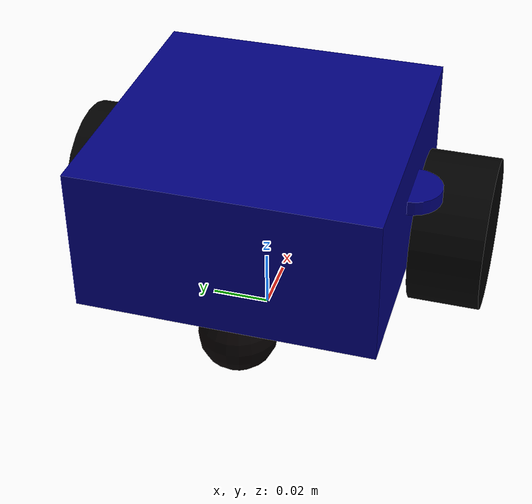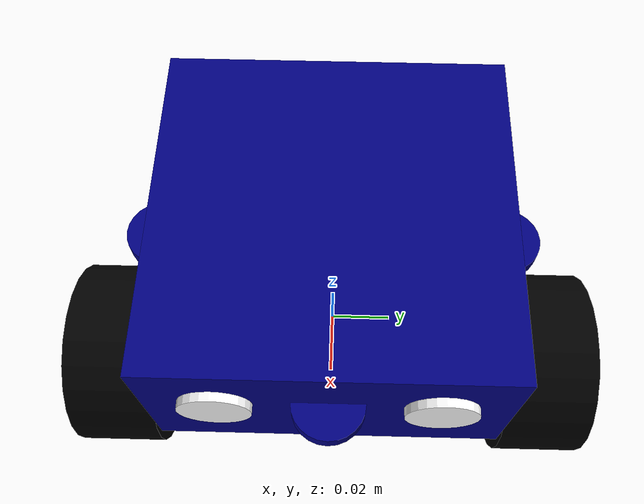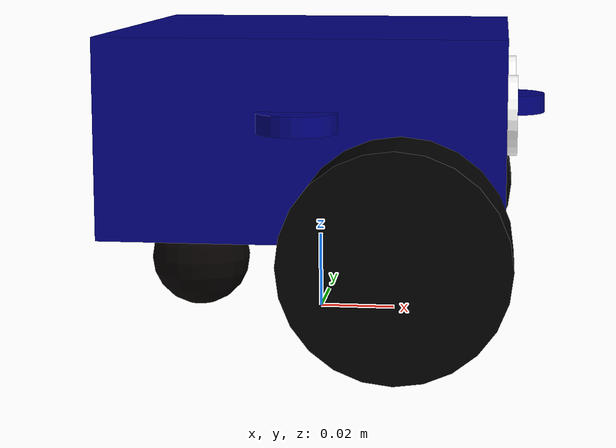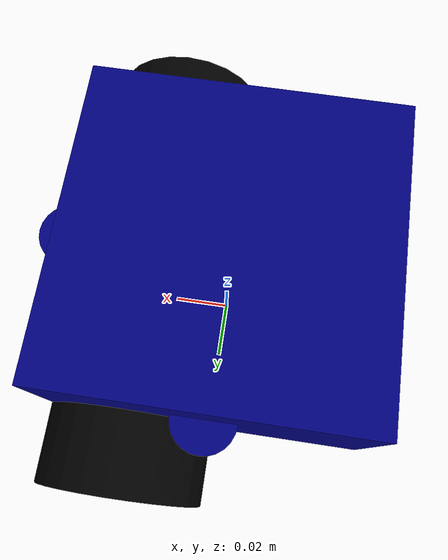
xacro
<?xml version="1.0"?>
<robot name="my_robot" xmlns:xacro="http://www.ros.org/wiki/xacro">

    <xacro:include filename="common_properties.xacro" />
    <xacro:include filename="mobile_base.xacro" />
    <xacro:include filename="mobile_base_gazebo.xacro" />
    <xacro:include filename="ultrasonic.xacro" />

</robot>

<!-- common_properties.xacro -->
<robot xmlns:xacro="http://www.ros.org/wiki/xacro">

    <material name="blue">
        <color rgba="0 0 0.5 1" />
    </material>

    <material name="white">
        <color rgba="1 1 1 1" />
    </material>

    <material name="grey">
        <color rgba="05 0.5 0.5 1" />
    </material>

     <material name="black">
        <color rgba="0 0 0 1" />
    </material>

    <xacro:macro name="box_inertia" params="m l w h xyz rpy">
        <inertial>
            <origin xyz="${xyz}" rpy="${rpy}" />
            <mass value="${m}" />
            <inertia ixx="${(m/12) * (h*h + l*l)}" ixy="0" ixz="0"
                     iyy="${(m/12) * (w*w + l*l)}" iyz="0"
                     izz="${(m/12) * (w*w + h*h)}" />
        </inertial>
    </xacro:macro>

    <xacro:macro name="cylinder_inertia" params="m r h xyz rpy">
        <inertial>
            <origin xyz="${xyz}" rpy="${rpy}" />
            <mass value="${m}" />
            <inertia ixx="${(m/12) * (3*r*r + h*h)}" ixy="0" ixz="0"
                     iyy="${(m/12) * (3*r*r + h*h)}" iyz="0"
                     izz="${(m/2) * (r*r)}" />
        </inertial>
    </xacro:macro>

    <xacro:macro name="sphere_inertia" params="m r xyz rpy">
        <inertial>
            <origin xyz="${xyz}" rpy="${rpy}" />
            <mass value="${m}" />
            <inertia ixx="${(2/5) * m * r * r}" ixy="0" ixz="0"
                     iyy="${(2/5) * m * r * r}" iyz="0"
                     izz="${(2/5) * m * r * r}" />
        </inertial>
    </xacro:macro>

</robot>

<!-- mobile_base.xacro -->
<robot xmlns:xacro="http://www.ros.org/wiki/xacro">

    <xacro:property name="base_length" value="0.1" />
    <xacro:property name="base_width" value="0.1" />
    <xacro:property name="base_height" value="0.05" />
    <xacro:property name="wheel_radius" value="0.027" />
    <xacro:property name="wheel_length" value="0.025" />

    <link name="base_footprint" />

    <link name="base_link">
        <visual>
            <geometry>
                <box size="${base_length} ${base_width} ${base_height}" />
            </geometry>
            <origin xyz="0 0 ${base_height / 2.0}" rpy="0 0 0" />
            <material name="blue" />
        </visual>
        <collision>
            <geometry>
                <box size="${base_length} ${base_width} ${base_height}" />
            </geometry>
            <origin xyz="0 0 ${base_height / 2.0}" rpy="0 0 0" />
        </collision>
        <xacro:box_inertia m="5.0" l="${2*base_length}" w="${2*base_width}" h="${2*base_height}"
                           xyz="0 0 ${base_height / 2.0}" rpy="0 0 0" />
    </link>

    <xacro:macro name="wheel_link" params="prefix">
        <link name="${prefix}_wheel_link">
            <visual>
                <geometry>
                    <cylinder radius="${wheel_radius}" length="${wheel_length}" />
                </geometry>
                <origin xyz="0 0 0" rpy="${pi / 2.0} 0 0" />
                <material name="black" />
            </visual>
            <collision>
                <geometry>
                    <cylinder radius="${wheel_radius}" length="${wheel_length}" />
                </geometry>
                <origin xyz="0 0 0" rpy="${pi / 2.0} 0 0" />
            </collision>
            <xacro:cylinder_inertia m="1.0" r="${2*wheel_radius}" h="${2*wheel_length}"
                                    xyz="0 0 0" rpy="${pi / 2.0} 0 0" />
        </link>
    </xacro:macro>

    <xacro:wheel_link prefix="right" />
    <xacro:wheel_link prefix="left" />

    <link name="caster_wheel_link">
        <visual>
            <geometry>
                <sphere radius="${wheel_radius / 2.0}" />
            </geometry>
            <origin xyz="0 0 0" rpy="0 0 0" />
            <material name="grey" />
        </visual>
        <collision>
            <geometry>
                <sphere radius="${wheel_radius / 2.0}" />
            </geometry>
            <origin xyz="0 0 0" rpy="0 0 0" />
        </collision>
        <xacro:sphere_inertia m="0.5" r="${2*wheel_radius / 2.0}"
                              xyz="0 0 0" rpy="0 0 0" />
    </link>

    <joint name="base_joint" type="fixed">
        <parent link="base_footprint" />
        <child link="base_link" />
        <origin xyz="0 0 ${wheel_radius}" rpy="0 0 0"/>
    </joint>

     <!-- continuous -->

    <joint name="base_right_wheel_joint" type="continuous">
        <parent link="base_link" />
        <child link="right_wheel_link" />
        <origin xyz="${base_length / 4.0} ${(base_width + wheel_length) / 2.0} 0" rpy="0 0 0" />
        <axis xyz="0 1 0" />
    </joint>

    <joint name="base_left_wheel_joint" type="continuous">
        <parent link="base_link" />
        <child link="left_wheel_link" />
        <origin xyz="${base_length / 4.0} ${-(base_width + wheel_length) / 2.0} 0" rpy="0 0 0" />
        <axis xyz="0 1 0" />
    </joint>

    <joint name="base_caster_wheel_joint" type="fixed">
        <parent link="base_link" />
        <child link="caster_wheel_link" />
        <origin xyz="${-base_length / 3.0} 0 ${-wheel_radius / 2.0}" rpy="0 0 0" />
    </joint>

</robot>

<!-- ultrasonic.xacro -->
<robot xmlns:xacro="http://www.ros.org/wiki/xacro" >

    <!--  Led Left -->
    <joint name="LedLeft_joint" type="fixed">
        <parent link="base_link"/>
        <child link="LedLeft_frame"/>
        <origin xyz="0.05 0.03 0.03" rpy="0 1.57 0"/>
    </joint>

    <link name="LedLeft_frame">
        <visual>
            <geometry>
                <cylinder radius="0.01" length="0.005"/>
            </geometry>
            <material name="white"/>
        </visual>
        <collision>
            <geometry>
                <cylinder radius="0.01" length="0.005"/>
            </geometry>
        </collision>

    </link>

    <!--  Led Right -->
    <joint name="LedRight_joint" type="fixed">
        <parent link="base_link"/>
        <child link="LedRight_frame"/>
        <origin xyz="0.05 -0.03 0.03" rpy="0 1.57 0"/>
    </joint>

    <link name="LedRight_frame">
        <visual>
            <geometry>
                <cylinder radius="0.01" length="0.005"/>
            </geometry>
            <material name="white"/>
        </visual>
        <collision>
            <geometry>
                <cylinder radius="0.01" length="0.005"/>
            </geometry>
        </collision>

    </link>

    <!-- Front ultrasonic -->
    <joint name="ultrasonic_jointF" type="fixed">
        <parent link="base_link"/>
        <child link="ultrasonic_frameF"/>
        <origin xyz="0.05 0 0.03" rpy="0 0 0"/>
    </joint>

    <link name="ultrasonic_frameF">
        <visual>
            <geometry>
                <cylinder radius="0.01" length="0.005"/>
            </geometry>
            <material name="blue"/>
        </visual>
        <collision>
            <geometry>
                <cylinder radius="0.01" length="0.005"/>
            </geometry>
        </collision>

    </link>

    <gazebo reference="ultrasonic_frameF">
        <material>Gazebo/Blue</material>
        <sensor name="laser" type="ray">
            <pose> 0 0 0 0 0 0 </pose>
            <visualize>true</visualize>
            <update_rate>10</update_rate>
            <ray>
                <scan>
                    <horizontal>
                        <samples>360</samples>
                        <min_angle>-0.01</min_angle>
                        <max_angle>0.01</max_angle>
                    </horizontal>
                </scan>
                <range>
                    <min>0.05</min>
                    <max>1</max>
                </range>
            </ray>
            <plugin name="laser_controller" filename="libgazebo_ros_ray_sensor.so">
                <ros>
                    <argument>~/out:=scan</argument>
                </ros>
                <output_type>sensor_msgs/LaserScan</output_type>
                <frame_name>ultrasonic_frameF</frame_name>
            </plugin>
        </sensor>
    </gazebo>

        <!-- Left ultrasonic -->
    <joint name="ultrasonic_joint_L" type="fixed">
        <parent link="base_link"/>
        <child link="ultrasonic_frame_L"/>
        <origin xyz="0.0 0.05 0.03" rpy="0 0 0"/>
    </joint>

    <link name="ultrasonic_frame_L">
        <visual>
            <geometry>
                <cylinder radius="0.01" length="0.005"/>
            </geometry>
            <material name="blue"/>
        </visual>
        <collision>
            <geometry>
                <cylinder radius="0.01" length="0.005"/>
            </geometry>
        </collision>

    </link>

     <gazebo reference="ultrasonic_frame_L">
        <material>Gazebo/Blue</material>
        <sensor name="laser_2" type="ray">
            <pose> 0 0 0 0 0 0 </pose>
            <visualize>true</visualize>
            <update_rate>10</update_rate>
            <ray>
                <scan>
                    <horizontal>
                        <samples>360</samples>
                        <min_angle>1.56</min_angle>
                        <max_angle>1.54</max_angle>
                    </horizontal>
                </scan>
                <range>
                    <min>0.05</min>
                    <max>1</max>
                </range>
            </ray>
            <plugin name="laser_controller_L" filename="libgazebo_ros_ray_sensor.so">
                <ros>
                    <argument>~/out:=scan_2</argument>
                </ros>
                <output_type>sensor_msgs/LaserScan</output_type>
                <frame_name>ultrasonic_frame_L</frame_name>
            </plugin>
        </sensor>
    </gazebo>

        <!-- Right ultrasonic -->
    <joint name="ultrasonic_joint_R" type="fixed">
        <parent link="base_link"/>
        <child link="ultrasonic_frame_R"/>
        <origin xyz="0 -0.05 0.03" rpy="0 0 0"/>
    </joint>

    <link name="ultrasonic_frame_R">
        <visual>
            <geometry>
                <cylinder radius="0.01" length="0.005"/>
            </geometry>
            <material name="blue"/>
        </visual>
        <collision>
            <geometry>
                <cylinder radius="0.01" length="0.005"/>
            </geometry>
        </collision>

    </link>

     <gazebo reference="ultrasonic_frame_R">
        <material>Gazebo/Blue</material>
        <sensor name="laser_3" type="ray">
            <pose> 0 0 0 0 0 0 </pose>
            <visualize>true</visualize>
            <update_rate>10</update_rate>
            <ray>
                <scan>
                    <horizontal>
                        <samples>360</samples>
                        <min_angle>-1.56</min_angle>
                        <max_angle>-1.54</max_angle>
                    </horizontal>
                </scan>
                <range>
                    <min>0.05</min>
                    <max>1</max>
                </range>
            </ray>
            <plugin name="laser_controller_3" filename="libgazebo_ros_ray_sensor.so">
                <ros>
                    <argument>~/out:=scan_3</argument>
                </ros>
                <output_type>sensor_msgs/LaserScan</output_type>
                <frame_name>ultrasonic_frame_R</frame_name>
            </plugin>
        </sensor>
    </gazebo>

</robot>
